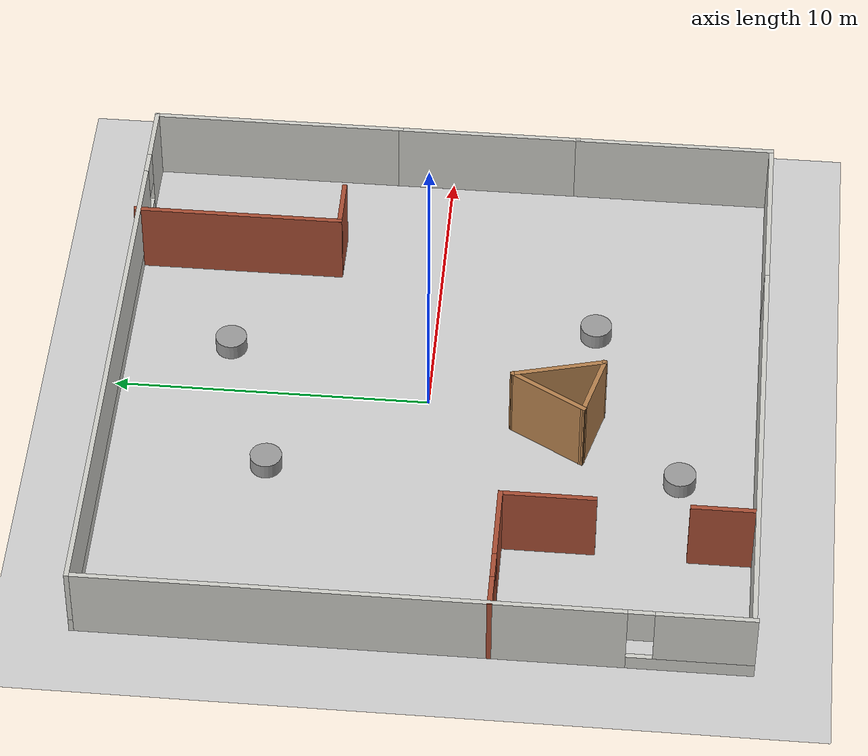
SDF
<sdf version="1.7">
 <world name="default">
  <light name="sun" type="directional">
   <pose>0 0 10 0 -0 0</pose>
   <diffuse>0.8 0.8 0.8 1</diffuse>
   <specular>0.2 0.2 0.2 1</specular>
   <attenuation>
    <range>1000</range>
    <constant>0.9</constant>
    <linear>0.01</linear>
    <quadratic>0.001</quadratic>
   </attenuation>
   <direction>-0.5 0.1 -0.9</direction>
   <spot><inner_angle>0</inner_angle><outer_angle>0</outer_angle><falloff>0</falloff></spot>
  </light>
  <model name="ground_plane">
   <static>1</static>
   <link name="link">
    <collision name="collision">
     <geometry><plane><normal>0 0 1</normal><size>100 100</size></plane></geometry>
     <surface>
      <contact><collide_bitmask>65535</collide_bitmask></contact>
      <friction><ode><mu>100</mu><mu2>50</mu2></ode></friction>
     </surface>
    </collision>
    <visual name="visual">
     <cast_shadows>0</cast_shadows>
     <geometry><plane><normal>0 0 1</normal><size>100 100</size></plane></geometry>
     <material>
      <script><uri>file://media/materials/scripts/gazebo.material</uri><name>Gazebo/Grey</name></script>
     </material>
    </visual>
   </link>
  </model>
  <gravity>0 0 -9.8</gravity>
  <magnetic_field>6e-06 2.3e-05 -4.2e-05</magnetic_field>
  <atmosphere type="adiabatic"/>
  <physics type="ode">
   <max_step_size>0.001</max_step_size>
   <real_time_factor>1</real_time_factor>
   <real_time_update_rate>1000</real_time_update_rate>
  </physics>
  <scene><ambient>0.4 0.4 0.4 1</ambient><background>0.7 0.7 0.7 1</background><shadows>1</shadows></scene>
  <spherical_coordinates>
   <surface_model>EARTH_WGS84</surface_model>
   <latitude_deg>0</latitude_deg>
   <longitude_deg>0</longitude_deg>
   <elevation>0</elevation>
   <heading_deg>0</heading_deg>
  </spherical_coordinates>
  <model name="wall_scene_1">
   <model name="wall_scene">
    <pose>0.013984 0.09679 0 0 -0 0</pose>
    <link name="Wall_12">
     <collision name="Wall_12_Collision">
      <geometry><box><size>14.25 0.15 2.5</size></box></geometry>
      <pose>0 0 1.25 0 -0 0</pose>
     </collision>
     <visual name="Wall_12_Visual">
      <pose>0 0 1.25 0 -0 0</pose>
      <geometry><box><size>14.25 0.15 2.5</size></box></geometry>
      <material>
       <script><uri>file://media/materials/scripts/gazebo.material</uri><name>Gazebo/CeilingTiled</name></script>
       <ambient>1 1 1 1</ambient>
      </material>
      <meta><layer>0</layer></meta>
     </visual>
     <pose>-2.84922 -10.1651 0 0 -0 0</pose>
    </link>
    <link name="Wall_16">
     <collision name="Wall_16_Collision">
      <geometry><box><size>6 0.15 2.5</size></box></geometry>
      <pose>0 0 1.25 0 -0 0</pose>
     </collision>
     <visual name="Wall_16_Visual">
      <pose>0 0 1.25 0 -0 0</pose>
      <geometry><box><size>6 0.15 2.5</size></box></geometry>
      <material>
       <script><uri>file://media/materials/scripts/gazebo.material</uri><name>Gazebo/CeilingTiled</name></script>
       <ambient>1 1 1 1</ambient>
      </material>
      <meta><layer>0</layer></meta>
     </visual>
     <pose>7.12578 -10.1651 0 0 -0 0</pose>
    </link>
    <link name="Wall_18">
     <collision name="Wall_18_Collision">
      <geometry><box><size>6.5 0.15 2.5</size></box></geometry>
      <pose>0 0 1.25 0 -0 0</pose>
     </collision>
     <visual name="Wall_18_Visual">
      <pose>0 0 1.25 0 -0 0</pose>
      <geometry><box><size>6.5 0.15 2.5</size></box></geometry>
      <material>
       <script><uri>file://media/materials/scripts/gazebo.material</uri><name>Gazebo/CeilingTiled</name></script>
       <ambient>1 1 1 1</ambient>
      </material>
      <meta><layer>0</layer></meta>
     </visual>
     <pose>10.0508 -6.99011 0 0 -0 1.5708</pose>
    </link>
    <link name="Wall_20">
     <collision name="Wall_20_Collision">
      <geometry><box><size>6 0.15 2.5</size></box></geometry>
      <pose>0 0 1.25 0 -0 0</pose>
     </collision>
     <visual name="Wall_20_Visual">
      <pose>0 0 1.25 0 -0 0</pose>
      <geometry><box><size>6 0.15 2.5</size></box></geometry>
      <material>
       <script><uri>file://media/materials/scripts/gazebo.material</uri><name>Gazebo/CeilingTiled</name></script>
       <ambient>1 1 1 1</ambient>
      </material>
      <meta><layer>0</layer></meta>
     </visual>
     <pose>10.0508 -0.89011 0 0 -0 1.5708</pose>
    </link>
    <link name="Wall_22">
     <collision name="Wall_22_Collision">
      <geometry><box><size>8.25 0.15 2.5</size></box></geometry>
      <pose>0 0 1.25 0 -0 0</pose>
     </collision>
     <visual name="Wall_22_Visual">
      <pose>0 0 1.25 0 -0 0</pose>
      <geometry><box><size>8.25 0.15 2.5</size></box></geometry>
      <material>
       <script><uri>file://media/materials/scripts/gazebo.material</uri><name>Gazebo/CeilingTiled</name></script>
       <ambient>1 1 1 1</ambient>
      </material>
      <meta><layer>0</layer></meta>
     </visual>
     <pose>10.0508 6.08489 0 0 -0 1.5708</pose>
    </link>
    <link name="Wall_23">
     <pose>0.000778 10.1349 0 0 -0 3.14159</pose>
     <visual name="Wall_23_Visual_0">
      <pose>-9.1334 0 1.25 0 -0 0</pose>
      <geometry><box><size>1.98321 0.15 2.5</size></box></geometry>
      <material>
       <script><uri>file://media/materials/scripts/gazebo.material</uri><name>Gazebo/CeilingTiled</name></script>
       <ambient>1 1 1 1</ambient>
      </material>
      <meta><layer>0</layer></meta>
     </visual>
     <collision name="Wall_23_Collision_0">
      <geometry><box><size>1.98321 0.15 2.5</size></box></geometry>
      <pose>-9.1334 0 1.25 0 -0 0</pose>
     </collision>
     <visual name="Wall_23_Visual_1">
      <pose>0.991605 0 0.25 0 -0 0</pose>
      <geometry><box><size>18.2668 0.15 0.5</size></box></geometry>
      <material>
       <script><uri>file://media/materials/scripts/gazebo.material</uri><name>Gazebo/CeilingTiled</name></script>
       <ambient>1 1 1 1</ambient>
      </material>
      <meta><layer>0</layer></meta>
     </visual>
     <collision name="Wall_23_Collision_1">
      <geometry><box><size>18.2668 0.15 0.5</size></box></geometry>
      <pose>0.991605 0 0.25 0 -0 0</pose>
     </collision>
     <visual name="Wall_23_Visual_2">
      <pose>1.3916 0 1.5 0 -0 0</pose>
      <geometry><box><size>17.4668 0.15 2</size></box></geometry>
      <material>
       <script><uri>file://media/materials/scripts/gazebo.material</uri><name>Gazebo/CeilingTiled</name></script>
       <ambient>1 1 1 1</ambient>
      </material>
      <meta><layer>0</layer></meta>
     </visual>
     <collision name="Wall_23_Collision_2">
      <geometry><box><size>17.4668 0.15 2</size></box></geometry>
      <pose>1.3916 0 1.5 0 -0 0</pose>
     </collision>
     <visual name="Wall_23_Visual_3">
      <pose>-7.74179 0 1.9 0 -0 0</pose>
      <geometry><box><size>0.8 0.15 1.2</size></box></geometry>
      <material>
       <script><uri>file://media/materials/scripts/gazebo.material</uri><name>Gazebo/CeilingTiled</name></script>
       <ambient>1 1 1 1</ambient>
      </material>
      <meta><layer>0</layer></meta>
     </visual>
     <collision name="Wall_23_Collision_3">
      <geometry><box><size>0.8 0.15 1.2</size></box></geometry>
      <pose>-7.74179 0 1.9 0 -0 0</pose>
     </collision>
    </link>
    <link name="Wall_31">
     <pose>-10.0492 -0.04011 0 0 -0 -1.5708</pose>
     <visual name="Wall_31_Visual_0">
      <pose>-1.91742 0 1.25 0 -0 0</pose>
      <geometry><box><size>16.6652 0.15 2.5</size></box></geometry>
      <material>
       <script><uri>file://media/materials/scripts/gazebo.material</uri><name>Gazebo/CeilingTiled</name></script>
       <ambient>1 1 1 1</ambient>
      </material>
      <meta><layer>0</layer></meta>
     </visual>
     <collision name="Wall_31_Collision_0">
      <geometry><box><size>16.6652 0.15 2.5</size></box></geometry>
      <pose>-1.91742 0 1.25 0 -0 0</pose>
     </collision>
     <visual name="Wall_31_Visual_1">
      <pose>8.33258 0 0.25 0 -0 0</pose>
      <geometry><box><size>3.83483 0.15 0.5</size></box></geometry>
      <material>
       <script><uri>file://media/materials/scripts/gazebo.material</uri><name>Gazebo/CeilingTiled</name></script>
       <ambient>1 1 1 1</ambient>
      </material>
      <meta><layer>0</layer></meta>
     </visual>
     <collision name="Wall_31_Collision_1">
      <geometry><box><size>3.83483 0.15 0.5</size></box></geometry>
      <pose>8.33258 0 0.25 0 -0 0</pose>
     </collision>
     <visual name="Wall_31_Visual_2">
      <pose>8.73258 0 1.5 0 -0 0</pose>
      <geometry><box><size>3.03483 0.15 2</size></box></geometry>
      <material>
       <script><uri>file://media/materials/scripts/gazebo.material</uri><name>Gazebo/CeilingTiled</name></script>
       <ambient>1 1 1 1</ambient>
      </material>
      <meta><layer>0</layer></meta>
     </visual>
     <collision name="Wall_31_Collision_2">
      <geometry><box><size>3.03483 0.15 2</size></box></geometry>
      <pose>8.73258 0 1.5 0 -0 0</pose>
     </collision>
     <visual name="Wall_31_Visual_3">
      <pose>6.81517 0 1.9 0 -0 0</pose>
      <geometry><box><size>0.8 0.15 1.2</size></box></geometry>
      <material>
       <script><uri>file://media/materials/scripts/gazebo.material</uri><name>Gazebo/CeilingTiled</name></script>
       <ambient>1 1 1 1</ambient>
      </material>
      <meta><layer>0</layer></meta>
     </visual>
     <collision name="Wall_31_Collision_3">
      <geometry><box><size>0.8 0.15 1.2</size></box></geometry>
      <pose>6.81517 0 1.9 0 -0 0</pose>
     </collision>
    </link>
    <link name="Wall_33">
     <pose>-7.87578 -2.3951 0 0 -0 0</pose>
     <visual name="Wall_33_Visual_0">
      <pose>-1.71315 0 1.25 0 -0 0</pose>
      <geometry><box><size>1.0737 0.15 2.5</size></box></geometry>
      <material>
       <script><uri>file://media/materials/scripts/gazebo.material</uri><name>Gazebo/Bricks</name></script>
       <ambient>1 1 1 1</ambient>
      </material>
      <meta><layer>0</layer></meta>
     </visual>
     <collision name="Wall_33_Collision_0">
      <geometry><box><size>1.0737 0.15 2.5</size></box></geometry>
      <pose>-1.71315 0 1.25 0 -0 0</pose>
     </collision>
     <visual name="Wall_33_Visual_1">
      <pose>0.986852 0 1.25 0 -0 0</pose>
      <geometry><box><size>2.5263 0.15 2.5</size></box></geometry>
      <material>
       <script><uri>file://media/materials/scripts/gazebo.material</uri><name>Gazebo/Bricks</name></script>
       <ambient>1 1 1 1</ambient>
      </material>
      <meta><layer>0</layer></meta>
     </visual>
     <collision name="Wall_33_Collision_1">
      <geometry><box><size>2.5263 0.15 2.5</size></box></geometry>
      <pose>0.986852 0 1.25 0 -0 0</pose>
     </collision>
     <visual name="Wall_33_Visual_2">
      <pose>-0.726295 0 2.25 0 -0 0</pose>
      <geometry><box><size>0.9 0.15 0.5</size></box></geometry>
      <material>
       <script><uri>file://media/materials/scripts/gazebo.material</uri><name>Gazebo/Bricks</name></script>
       <ambient>1 1 1 1</ambient>
      </material>
      <meta><layer>0</layer></meta>
     </visual>
     <collision name="Wall_33_Collision_2">
      <geometry><box><size>0.9 0.15 0.5</size></box></geometry>
      <pose>-0.726295 0 2.25 0 -0 0</pose>
     </collision>
    </link>
    <link name="Wall_34">
     <collision name="Wall_34_Collision">
      <geometry><box><size>3 0.15 2.5</size></box></geometry>
      <pose>0 0 1.25 0 -0 0</pose>
     </collision>
     <visual name="Wall_34_Visual">
      <pose>0 0 1.25 0 -0 0</pose>
      <geometry><box><size>3 0.15 2.5</size></box></geometry>
      <material>
       <script><uri>file://media/materials/scripts/gazebo.material</uri><name>Gazebo/Bricks</name></script>
       <ambient>1 1 1 1</ambient>
      </material>
      <meta><layer>0</layer></meta>
     </visual>
     <pose>-5.70078 -3.8201 0 0 -0 -1.5708</pose>
    </link>
    <link name="Wall_36">
     <collision name="Wall_36_Collision">
      <geometry><box><size>2 0.15 2.5</size></box></geometry>
      <pose>0 0 1.25 0 -0 0</pose>
     </collision>
     <visual name="Wall_36_Visual">
      <pose>0 0 1.25 0 -0 0</pose>
      <geometry><box><size>2 0.15 2.5</size></box></geometry>
      <material>
       <script><uri>file://media/materials/scripts/gazebo.material</uri><name>Gazebo/Bricks</name></script>
       <ambient>1 1 1 1</ambient>
      </material>
      <meta><layer>0</layer></meta>
     </visual>
     <pose>-5.78143 -9.11727 0 0 -0 -1.5708</pose>
    </link>
    <link name="Wall_38">
     <collision name="Wall_38_Collision">
      <geometry><box><size>6.75 0.15 2.5</size></box></geometry>
      <pose>0 0 1.25 0 -0 0</pose>
     </collision>
     <visual name="Wall_38_Visual">
      <pose>0 0 1.25 0 -0 0</pose>
      <geometry><box><size>6.75 0.15 2.5</size></box></geometry>
      <material>
       <script><uri>file://media/materials/scripts/gazebo.material</uri><name>Gazebo/Bricks</name></script>
       <ambient>1 1 1 1</ambient>
      </material>
      <meta><layer>0</layer></meta>
     </visual>
     <pose>5.56829 6.91511 0 0 -0 -1.5708</pose>
    </link>
    <link name="Wall_39">
     <collision name="Wall_39_Collision">
      <geometry><box><size>1.75 0.15 2.5</size></box></geometry>
      <pose>0 0 1.25 0 -0 0</pose>
     </collision>
     <visual name="Wall_39_Visual">
      <pose>0 0 1.25 0 -0 0</pose>
      <geometry><box><size>1.75 0.15 2.5</size></box></geometry>
      <material>
       <script><uri>file://media/materials/scripts/gazebo.material</uri><name>Gazebo/Bricks</name></script>
       <ambient>1 1 1 1</ambient>
      </material>
      <meta><layer>0</layer></meta>
     </visual>
     <pose>6.36829 3.61511 0 0 -0 0</pose>
    </link>
    <static>1</static>
   </model>
   <model name="wall_scene_0">
    <link name="link_11">
     <inertial>
      <mass>1</mass>
      <inertia><ixx>0.145833</ixx><ixy>0</ixy><ixz>0</ixz><iyy>0.145833</iyy><iyz>0</iyz><izz>0.125</izz></inertia>
     </inertial>
     <pose>2.05891 6.9627 0 0 -0 0</pose>
     <visual name="visual">
      <geometry><cylinder><radius>0.5</radius><length>1</length></cylinder></geometry>
      <material>
       <lighting>1</lighting>
       <script><uri>file://media/materials/scripts/gazebo.material</uri><name>Gazebo/Grey</name></script>
       <shader type="pixel"/>
      </material>
     </visual>
     <collision name="collision">
      <geometry><cylinder><radius>0.5</radius><length>1</length></cylinder></geometry>
      <surface>
       <friction>
        <ode><mu>1</mu><mu2>1</mu2><fdir1>0 0 0</fdir1><slip1>0</slip1><slip2>0</slip2></ode>
        <torsional>
         <coefficient>1</coefficient>
         <patch_radius>0</patch_radius>
         <surface_radius>0</surface_radius>
         <use_patch_radius>1</use_patch_radius>
         <ode><slip>0</slip></ode>
        </torsional>
       </friction>
       <bounce><restitution_coefficient>0</restitution_coefficient><threshold>1e+06</threshold></bounce>
       <contact>
        <collide_without_contact>0</collide_without_contact>
        <collide_without_contact_bitmask>1</collide_without_contact_bitmask>
        <collide_bitmask>1</collide_bitmask>
        <ode>
         <soft_cfm>0</soft_cfm>
         <soft_erp>0.2</soft_erp>
         <kp>1e+13</kp>
         <kd>1</kd>
         <max_vel>0.01</max_vel>
         <min_depth>0</min_depth>
        </ode>
        <bullet>
         <split_impulse>1</split_impulse>
         <split_impulse_penetration_threshold>-0.01</split_impulse_penetration_threshold>
         <soft_cfm>0</soft_cfm>
         <soft_erp>0.2</soft_erp>
         <kp>1e+13</kp>
         <kd>1</kd>
        </bullet>
       </contact>
      </surface>
     </collision>
    </link>
    <link name="link_7">
     <inertial>
      <mass>1</mass>
      <inertia><ixx>0.145833</ixx><ixy>0</ixy><ixz>0</ixz><iyy>0.145833</iyy><iyz>0</iyz><izz>0.125</izz></inertia>
     </inertial>
     <pose>3.54927 -4.64796 0 0 -0 0</pose>
     <visual name="visual">
      <geometry><cylinder><radius>0.5</radius><length>1</length></cylinder></geometry>
      <material>
       <lighting>1</lighting>
       <script><uri>file://media/materials/scripts/gazebo.material</uri><name>Gazebo/Grey</name></script>
       <shader type="pixel"/>
      </material>
     </visual>
     <collision name="collision">
      <geometry><cylinder><radius>0.5</radius><length>1</length></cylinder></geometry>
      <surface>
       <friction>
        <ode><mu>1</mu><mu2>1</mu2><fdir1>0 0 0</fdir1><slip1>0</slip1><slip2>0</slip2></ode>
        <torsional>
         <coefficient>1</coefficient>
         <patch_radius>0</patch_radius>
         <surface_radius>0</surface_radius>
         <use_patch_radius>1</use_patch_radius>
         <ode><slip>0</slip></ode>
        </torsional>
       </friction>
       <bounce><restitution_coefficient>0</restitution_coefficient><threshold>1e+06</threshold></bounce>
       <contact>
        <collide_without_contact>0</collide_without_contact>
        <collide_without_contact_bitmask>1</collide_without_contact_bitmask>
        <collide_bitmask>1</collide_bitmask>
        <ode>
         <soft_cfm>0</soft_cfm>
         <soft_erp>0.2</soft_erp>
         <kp>1e+13</kp>
         <kd>1</kd>
         <max_vel>0.01</max_vel>
         <min_depth>0</min_depth>
        </ode>
        <bullet>
         <split_impulse>1</split_impulse>
         <split_impulse_penetration_threshold>-0.01</split_impulse_penetration_threshold>
         <soft_cfm>0</soft_cfm>
         <soft_erp>0.2</soft_erp>
         <kp>1e+13</kp>
         <kd>1</kd>
        </bullet>
       </contact>
      </surface>
     </collision>
    </link>
    <link name="link_8">
     <inertial>
      <mass>1</mass>
      <inertia><ixx>0.145833</ixx><ixy>0</ixy><ixz>0</ixz><iyy>0.145833</iyy><iyz>0</iyz><izz>0.125</izz></inertia>
     </inertial>
     <pose>-2.65354 -7.58654 0 0 -0 0</pose>
     <visual name="visual">
      <geometry><cylinder><radius>0.5</radius><length>1</length></cylinder></geometry>
      <material>
       <lighting>1</lighting>
       <script><uri>file://media/materials/scripts/gazebo.material</uri><name>Gazebo/Grey</name></script>
       <shader type="pixel"/>
      </material>
     </visual>
     <collision name="collision">
      <geometry><cylinder><radius>0.5</radius><length>1</length></cylinder></geometry>
      <surface>
       <friction>
        <ode><mu>1</mu><mu2>1</mu2><fdir1>0 0 0</fdir1><slip1>0</slip1><slip2>0</slip2></ode>
        <torsional>
         <coefficient>1</coefficient>
         <patch_radius>0</patch_radius>
         <surface_radius>0</surface_radius>
         <use_patch_radius>1</use_patch_radius>
         <ode><slip>0</slip></ode>
        </torsional>
       </friction>
       <bounce><restitution_coefficient>0</restitution_coefficient><threshold>1e+06</threshold></bounce>
       <contact>
        <collide_without_contact>0</collide_without_contact>
        <collide_without_contact_bitmask>1</collide_without_contact_bitmask>
        <collide_bitmask>1</collide_bitmask>
        <ode>
         <soft_cfm>0</soft_cfm>
         <soft_erp>0.2</soft_erp>
         <kp>1e+13</kp>
         <kd>1</kd>
         <max_vel>0.01</max_vel>
         <min_depth>0</min_depth>
        </ode>
        <bullet>
         <split_impulse>1</split_impulse>
         <split_impulse_penetration_threshold>-0.01</split_impulse_penetration_threshold>
         <soft_cfm>0</soft_cfm>
         <soft_erp>0.2</soft_erp>
         <kp>1e+13</kp>
         <kd>1</kd>
        </bullet>
       </contact>
      </surface>
     </collision>
    </link>
    <link name="link_9">
     <inertial>
      <mass>1</mass>
      <inertia><ixx>0.145833</ixx><ixy>0</ixy><ixz>0</ixz><iyy>0.145833</iyy><iyz>0</iyz><izz>0.125</izz></inertia>
     </inertial>
     <pose>-2.95464 5.2718 0 0 -0 0</pose>
     <visual name="visual">
      <geometry><cylinder><radius>0.5</radius><length>1</length></cylinder></geometry>
      <material>
       <lighting>1</lighting>
       <script><uri>file://media/materials/scripts/gazebo.material</uri><name>Gazebo/Grey</name></script>
       <shader type="pixel"/>
      </material>
     </visual>
     <collision name="collision">
      <geometry><cylinder><radius>0.5</radius><length>1</length></cylinder></geometry>
      <surface>
       <friction>
        <ode><mu>1</mu><mu2>1</mu2><fdir1>0 0 0</fdir1><slip1>0</slip1><slip2>0</slip2></ode>
        <torsional>
         <coefficient>1</coefficient>
         <patch_radius>0</patch_radius>
         <surface_radius>0</surface_radius>
         <use_patch_radius>1</use_patch_radius>
         <ode><slip>0</slip></ode>
        </torsional>
       </friction>
       <bounce><restitution_coefficient>0</restitution_coefficient><threshold>1e+06</threshold></bounce>
       <contact>
        <collide_without_contact>0</collide_without_contact>
        <collide_without_contact_bitmask>1</collide_without_contact_bitmask>
        <collide_bitmask>1</collide_bitmask>
        <ode>
         <soft_cfm>0</soft_cfm>
         <soft_erp>0.2</soft_erp>
         <kp>1e+13</kp>
         <kd>1</kd>
         <max_vel>0.01</max_vel>
         <min_depth>0</min_depth>
        </ode>
        <bullet>
         <split_impulse>1</split_impulse>
         <split_impulse_penetration_threshold>-0.01</split_impulse_penetration_threshold>
         <soft_cfm>0</soft_cfm>
         <soft_erp>0.2</soft_erp>
         <kp>1e+13</kp>
         <kd>1</kd>
        </bullet>
       </contact>
      </surface>
     </collision>
    </link>
    <static>0</static>
    <pose>-0.013985 -0.096789 0 0 -0 0</pose>
   </model>
   <static>0</static>
   <pose>-0.127665 -0.359584 0 0 -0 0</pose>
  </model>
  <model name="triangle">
   <pose>-1.12123 -2.79419 0 0 -0 0</pose>
   <link name="Wall_6">
    <collision name="Wall_6_Collision">
     <geometry><box><size>2.75 0.15 2.5</size></box></geometry>
     <pose>0 0 1.25 0 -0 0</pose>
    </collision>
    <visual name="Wall_6_Visual">
     <pose>0 0 1.25 0 -0 0</pose>
     <geometry><box><size>2.75 0.15 2.5</size></box></geometry>
     <material>
      <script><uri>file://media/materials/scripts/gazebo.material</uri><name>Gazebo/Wood</name></script>
      <ambient>1 1 1 1</ambient>
     </material>
     <meta><layer>0</layer></meta>
    </visual>
    <pose>-0.368774 -1.03299 0 0 -0 1.0472</pose>
   </link>
   <link name="Wall_8">
    <collision name="Wall_8_Collision">
     <geometry><box><size>2.25 0.15 2.5</size></box></geometry>
     <pose>0 0 1.25 0 -0 0</pose>
    </collision>
    <visual name="Wall_8_Visual">
     <pose>0 0 1.25 0 -0 0</pose>
     <geometry><box><size>2.25 0.15 2.5</size></box></geometry>
     <material>
      <script><uri>file://media/materials/scripts/gazebo.material</uri><name>Gazebo/Wood</name></script>
      <ambient>1 1 1 1</ambient>
     </material>
     <meta><layer>0</layer></meta>
    </visual>
    <pose>-0.004552 -2.43058 0 0 -0 -0.261799</pose>
   </link>
   <link name="Wall_9">
    <collision name="Wall_9_Collision">
     <geometry><box><size>3.03855 0.15 2.5</size></box></geometry>
     <pose>0 0 1.25 0 -0 0</pose>
    </collision>
    <visual name="Wall_9_Visual">
     <pose>0 0 1.25 0 -0 0</pose>
     <geometry><box><size>3.03855 0.15 2.5</size></box></geometry>
     <material>
      <script><uri>file://media/materials/scripts/gazebo.material</uri><name>Gazebo/Wood</name></script>
      <ambient>1 1 1 1</ambient>
     </material>
     <meta><layer>0</layer></meta>
    </visual>
    <pose>0.645448 -1.30475 0 0 -0 1.82573</pose>
   </link>
   <static>1</static>
  </model>
 </world>
</sdf>
